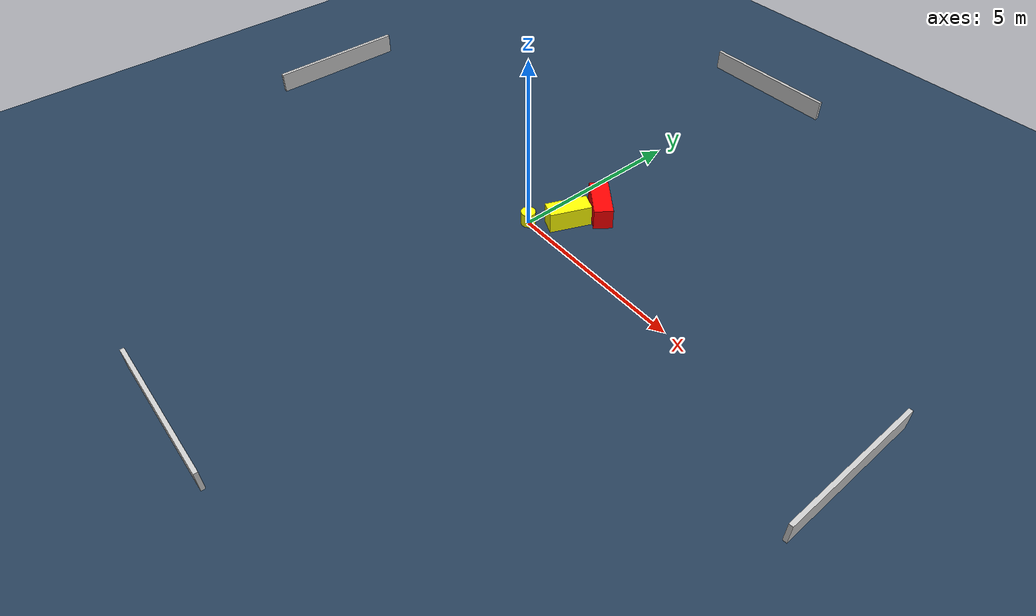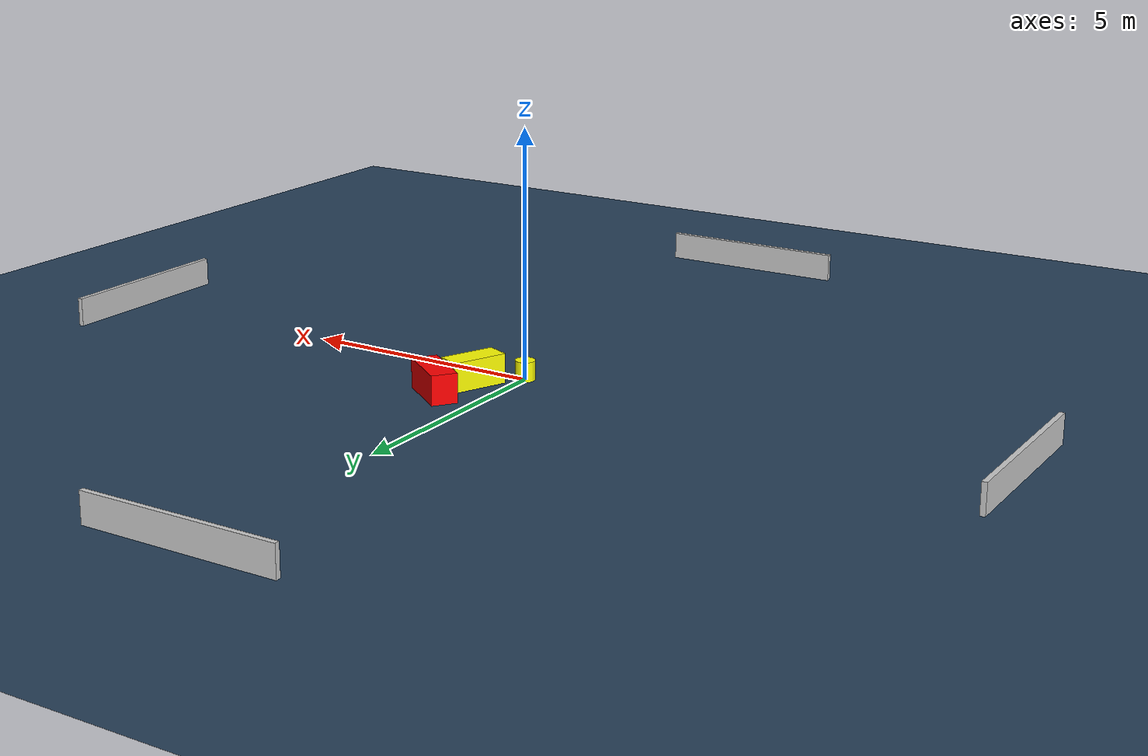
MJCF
<?xml version="1.0" ?>
<mujoco model="generated_environment">
  <option timestep="0.01" integrator="RK4" cone="elliptic"/>
  <default>
    <geom density="1"/>
  </default>
  <asset>
    <texture builtin="gradient" height="3072" name="skybox" rgb1="0.3 0.5 0.7" rgb2="0 0 0" type="skybox" width="512"/>
    <texture builtin="checker" height="300" name="groundplane" rgb1="0.2 0.3 0.4" rgb2="0.1 0.2 0.3" type="2d" width="300"/>
    <material name="groundplane" reflectance="0.2" texrepeat="5 5" texture="groundplane"/>
  </asset>
  <worldbody>
    <light dir="0 0 -1" directional="true" pos="0 0 1.5"/>
    <geom condim="3" friction="0.5 0.005 0.001" material="groundplane" name="floor" pos="0 0 0" size="0 0 0.05" type="plane"/>
    <body name="walls">
      <geom name="wall_1" condim="4" pos="-10.0 0.0 0.3" rgba="0.800000011920929 0.800000011920929 0.800000011920929 1.0" size="0.05 2.0 0.3" type="box"/>
      <geom name="wall_2" condim="4" pos="10.0 0.0 0.3" rgba="0.800000011920929 0.800000011920929 0.800000011920929 1.0" size="0.05 2.0 0.3" type="box"/>
      <geom name="wall_3" condim="4" pos="0.0 -10.0 0.3" rgba="0.800000011920929 0.800000011920929 0.800000011920929 1.0" size="2.0 0.05 0.3" type="box"/>
      <geom name="wall_4" condim="4" pos="0.0 10.0 0.3" rgba="0.800000011920929 0.800000011920929 0.800000011920929 1.0" size="2.0 0.05 0.3" type="box"/>
    </body>
    <body name="robot">
      <joint name="joint_x" type="slide" pos="0 0 0" axis="1 0 0"/>
      <joint name="joint_y" type="slide" pos="0 0 0" axis="0 1 0"/>
      <geom name="robot" type="cylinder" pos="0.0 0.0 0.2" size="0.2 0.2 0.0" mass="5.0" friction="1.0 0.005 0.0001" condim="4" rgba="1.0 1.0 0.0 1.0"/>
    </body>
    <body name="obstacle_1_movable">
      <geom name="obstacle_1_movable" condim="4" pos="0.668604268929757 0.8255844926158219 0.3" euler="0 0 246.92853079341367" friction="0.0 0.005 0.001" rgba="1.0 1.0 0.0 1.0" size="0.5798634533054005 0.24760844525506337 0.3" type="box" mass="0.1"/>
      <joint type="free"/>
    </body>
    <body name="obstacle_2_static">
      <geom name="obstacle_2_static" condim="4" pos="0.9531772073564582 1.7414590625506654 0.3" euler="0 0 323.4817228523814" friction="0.0 0.005 0.001" rgba="1.0 0.0 0.0 1.0" size="0.606699816334643 0.2599351717382161 0.3" type="box"/>
    </body>
  </worldbody>
  <actuator>
    <motor name="actuator_x" joint="joint_x" gear="1" ctrlrange="-1 1"/>
    <motor name="actuator_y" joint="joint_y" gear="1" ctrlrange="-1 1"/>
  </actuator>
</mujoco>
